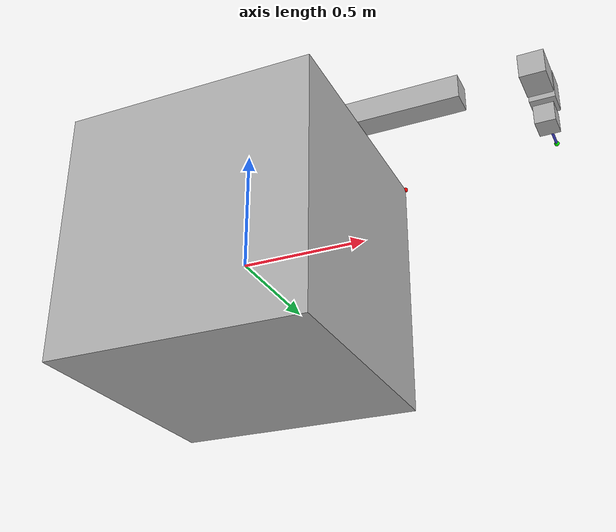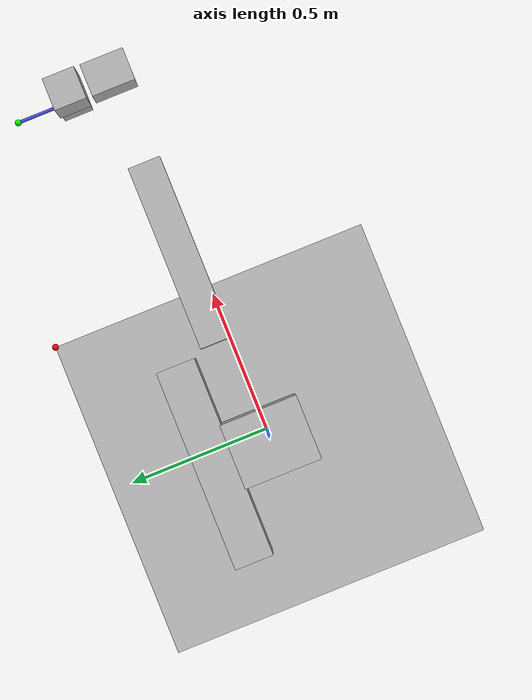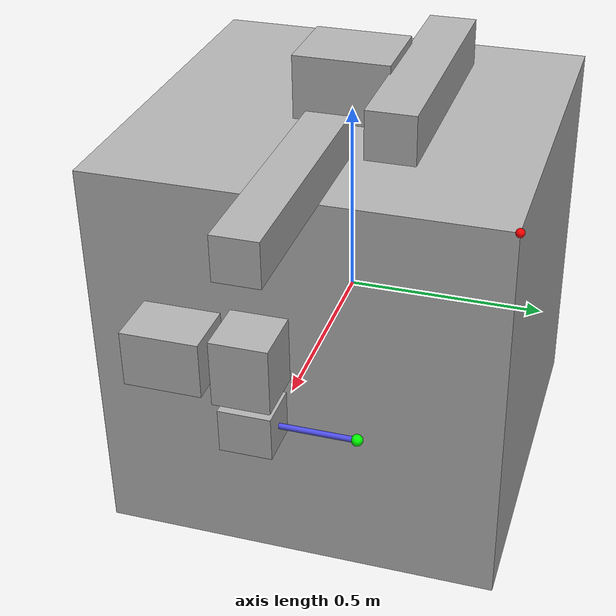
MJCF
<mujoco model="ur10e">
  <compiler angle="radian"/>
  <option cone="elliptic" gravity="0 0 0" impratio="5" timestep="0.01" tolerance="1e-10" />

  <asset>
    <!-- Mesh assets are removed as they are no longer used by geoms -->
  </asset>

  <worldbody>
    <site name="target" pos="0.5 0.5 0.5" size="0.01" rgba="1 0 0 1"/>
    <body name="base_link" pos="0 0 0">
      <freejoint name='base_freejoint'/>
      <inertial pos="0 0 0" mass="104" diaginertia="16.676106 16.676106 16.67125"/>
      <!-- This existing box geom is untouched as it's not a mesh -->
      <geom size="0.5 0.5 0.5" type="box" contype="2" conaffinity="1" group="1" density="0" rgba="0.7 0.7 0.7 1"/>
      <!-- Original mesh geom replaced by a box geom -->
      <geom type="box" size="0.15 0.15 0.29" contype="0" conaffinity="0" density="0" rgba="0.7 0.7 0.7 1"/>
      <body name="shoulder_link" pos="0 0 0.581">
        <inertial pos="0 0 0" mass="7.778" diaginertia="0.0315 0.0315 0.02188"/>
        <joint name="shoulder_pan_joint" pos="0 0 0" axis="0 0 1" range="-6.28318 6.28318"/>
        <geom type="box" size="0.1 0.12 0.08" contype="2" conaffinity="1" group="1" density="0" rgba="0.7 0.7 0.7 1"/>
        <geom type="box" size="0.1 0.12 0.08" contype="0" conaffinity="0" density="0" rgba="0.7 0.7 0.7 1"/>
        <body name="upper_arm_link" pos="0 0.176 0" quat="0.707105 0 0.707108 0">
          <inertial pos="0 0 0.3065" mass="12.93" diaginertia="0.42307 0.42307 0.0364"/>
          <joint name="shoulder_lift_joint" pos="0 0 0" axis="0 1 0" range="-6.28318 6.28318"/>
          <geom type="box" size="0.06 0.06 0.31" contype="2" conaffinity="1" group="1" density="0" rgba="0.7 0.7 0.7 1"/>
          <geom type="box" size="0.06 0.06 0.31" contype="0" conaffinity="0" density="0" rgba="0.7 0.7 0.7 1"/>
          <body name="forearm_link" pos="0 -0.137 0.613">
            <inertial pos="0 0 0.2855" mass="3.87" diaginertia="0.11059 0.11059 0.01088"/>
            <joint name="elbow_joint" pos="0 0 0" axis="0 1 0" range="-3.14159 3.14159"/>
            <geom type="box" size="0.05 0.05 0.285" contype="2" conaffinity="1" group="1" density="0" rgba="0.7 0.7 0.7 1"/>
            <geom type="box" size="0.05 0.05 0.285" contype="0" conaffinity="0" density="0" rgba="0.7 0.7 0.7 1"/>
            <body name="wrist_1_link" pos="0 0 0.571" quat="0.707105 0 0.707108 0">
              <inertial pos="0 0.135 0" quat="0.5 0.5 -0.5 0.5" mass="1.96" diaginertia="0.0055125 0.005108 0.005108"/>
              <joint name="wrist_1_joint" pos="0 0 0" axis="0 1 0" range="-6.28318 6.28318"/>
              <geom type="box" size="0.05 0.0675 0.05" contype="2" conaffinity="1" group="1" density="0" rgba="0.7 0.7 0.7 1"/>
              <geom type="box" size="0.05 0.0675 0.05" contype="0" conaffinity="0" density="0" rgba="0.7 0.7 0.7 1"/>
              <body name="wrist_2_link" pos="0 0.135 0">
                <inertial pos="0 0 0.12" quat="0.5 0.5 -0.5 0.5" mass="1.96" diaginertia="0.0055125 0.005108 0.005108"/>
                <joint name="wrist_2_joint" pos="0 0 0" axis="0 0 1" range="-6.28318 6.28318"/>
                <geom type="box" size="0.05 0.05 0.06" contype="2" conaffinity="1" group="1" density="0" rgba="0.7 0.7 0.7 1"/>
                <geom type="box" size="0.05 0.05 0.06" contype="0" conaffinity="0" density="0" rgba="0.7 0.7 0.7 1"/>
                <body name="wrist_3_link" pos="0 0 0.12">
                  <inertial pos="0 0.092 0" quat="0.5 0.5 -0.5 0.5" mass="0.202" diaginertia="0.000205 0.000144 0.000144"/>
                  <joint name="wrist_3_joint" pos="0 0 0" axis="0 1 0" range="-6.28318 6.28318"/>
                  <geom type="box" size="0.04 0.046 0.04" contype="2" conaffinity="1" group="1" density="0" rgba="0.7 0.7 0.7 1"/>
                  <geom type="box" size="0.04 0.046 0.04" contype="0" conaffinity="0" density="0" rgba="0.7 0.7 0.7 1"/>
                  <body name="ee_stick" pos="0 0.092 0" euler="-1.57 0 0">
                    <!-- This geom is type="cylinder", not mesh, so it remains unchanged -->
                    <geom name="ee_stick_geom" type="cylinder" contype="2" conaffinity="1" size="0.005 0.088 " density ='0' rgba="0.3 0.3 0.9 1"/>
                    <site name="end_effector" pos="0 0 0.088" size="0.01" rgba="0 1 0 1"/>
                  </body>
                </body>
              </body>
            </body>
          </body>
        </body>
      </body>
    </body>
  </worldbody>

  <actuator>
    <!-- 각 관절을 제어하기 위한 actuator -->
    <general ctrllimited="true" ctrlrange="-330 330" forcelimited="true" forcerange="-330 330" joint="shoulder_pan_joint" name="shoulder_pan_T"/>
    <general ctrllimited="true" ctrlrange="-330 330" forcelimited="true" forcerange="-330 330" joint="shoulder_lift_joint" name="shoulder_lift_T"/>
    <general ctrllimited="true" ctrlrange="-150 150" forcelimited="true" forcerange="-150 150" joint="elbow_joint" name="elbow_T"/>
    <general ctrllimited="true" ctrlrange="-54 54" forcelimited="true" forcerange="-54 54" joint="wrist_1_joint" name="wrist_1_T"/>
    <general ctrllimited="true" ctrlrange="-54 54" forcelimited="true" forcerange="-54 54" joint="wrist_2_joint" name="wrist_2_T"/>
    <general ctrllimited="true" ctrlrange="-54 54" forcelimited="true" forcerange="-54 54" joint="wrist_3_joint" name="wrist_3_T"/>
  </actuator>
  <sensor>
    <!-- 각 관절의 위치(각도)를 측정 -->
    <jointpos joint="shoulder_pan_joint" name="shoulder_pan_pos"/>
    <jointpos joint="shoulder_lift_joint" name="shoulder_lift_pos"/>
    <jointpos joint="elbow_joint" name="elbow_pos"/>
    <jointpos joint="wrist_1_joint" name="wrist_1_pos"/>
    <jointpos joint="wrist_2_joint" name="wrist_2_pos"/>
    <jointpos joint="wrist_3_joint" name="wrist_3_pos"/>

    <!-- 각 관절의 속도(angular velocity)를 측정 -->
    <jointvel joint="shoulder_pan_joint" name="shoulder_pan_vel"/>
    <jointvel joint="shoulder_lift_joint" name="shoulder_lift_vel"/>
    <jointvel joint="elbow_joint" name="elbow_vel"/>
    <jointvel joint="wrist_1_joint" name="wrist_1_vel"/>
    <jointvel joint="wrist_2_joint" name="wrist_2_vel"/>
    <jointvel joint="wrist_3_joint" name="wrist_3_vel"/>
  </sensor>

</mujoco>
